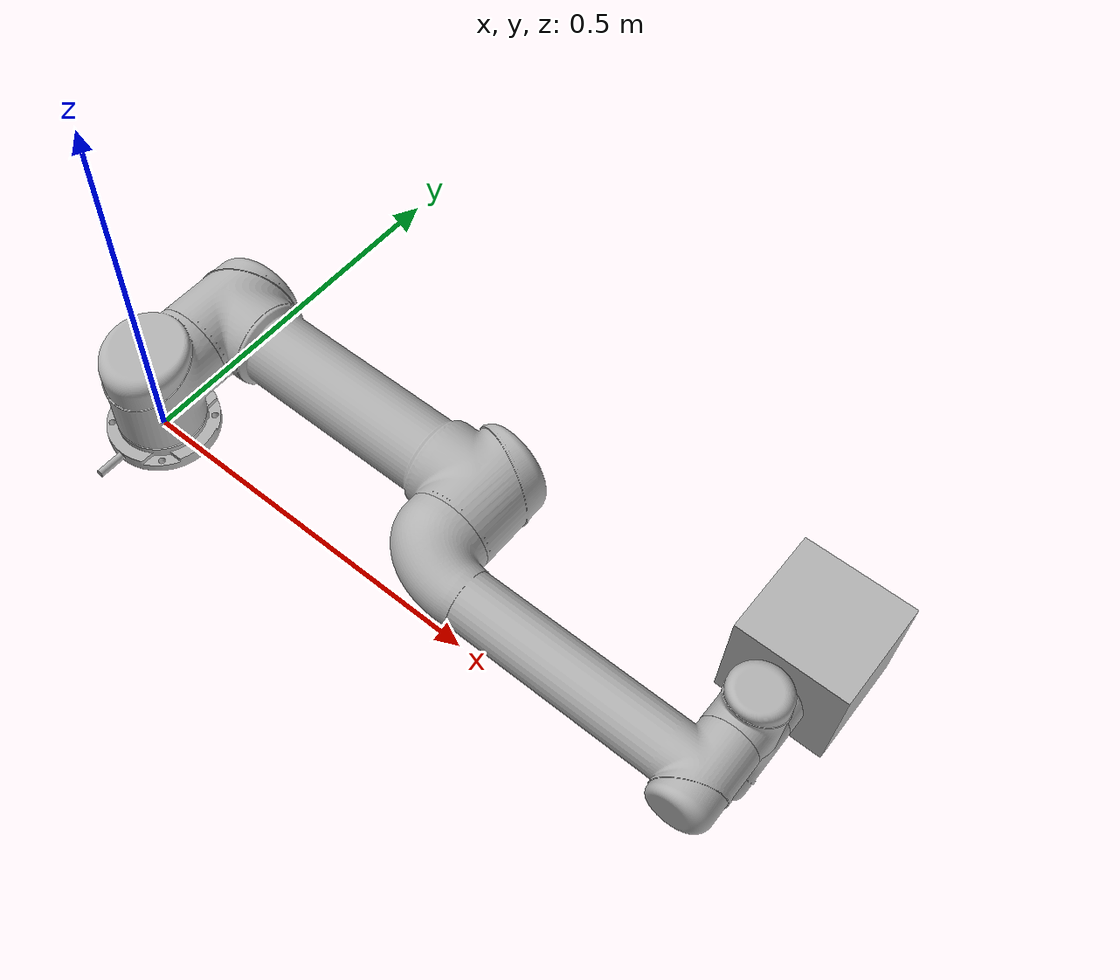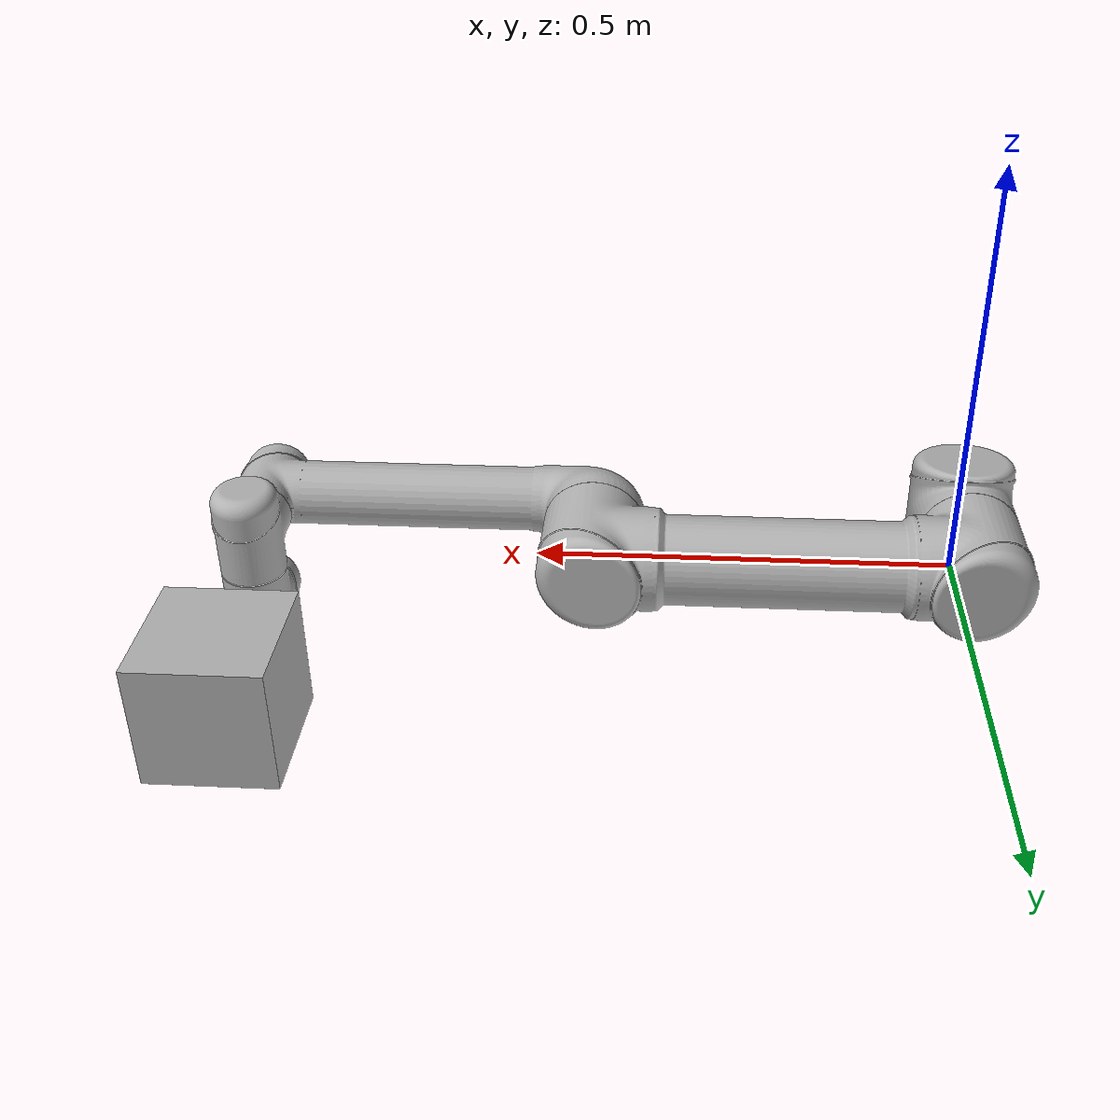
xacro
<?xml version="1.0"?>
<robot name="ur5" xmlns:xacro="http://www.ros.org/wiki/xacro">

  <xacro:include filename="$(find ur5_description)/urdf/ur5_joint_limited_robot.urdf.xacro" />
  <xacro:include filename="$(find robotiq_description)/urdf/robotiq_85_gripper.urdf.xacro" />
  <xacro:property name="width" value="0.15" />
  <xacro:property name="mass" value="4" /> <!-- arbitrary value for mass -->

  <!-- Robotiq Coupler -->
  <!--  + Height added by the coupler: 8mm -->
  <!--  + Reference frame: at the middle (4mm) -->
    <link name="box">
      <visual>
        <origin xyz="0 0 ${width/2}" rpy="0 0 0"/>
        <geometry>
          <box size="${width} ${width} ${width}"/>
        </geometry>
        <material name="orange">
          <color rgba="0.7 0.7 0.7 1.0"/>
        </material>
      </visual>
      <collision>
        <origin xyz="0 0 ${width/2}" rpy="0 0 0"/>
        <geometry>
          <box size="${width} ${width} ${width}"/>
        </geometry>
      </collision>
      <inertial>
        <origin xyz="0 0 ${width/2}" rpy="0 0 0"/>
        <mass value="${mass}"/>
        <inertia
            ixx="${mass / 12.0 * (width*width + width*width)}" ixy="0.0" ixz="0.0"
            iyy="${mass / 12.0 * (width*width + width*width)}" iyz="0.0"
            izz="${mass / 12.0 * (width*width + width*width)}"/>
      </inertial>
    </link>

    <joint name="box_joint" type="fixed">
      <origin xyz="0 0 0" rpy="0 0 0"/>
      <parent link="tool0"/>
      <child link="box"/>
    </joint>

    <gazebo reference="box">
        <mu1>10.0</mu1>
        <mu2>10.0</mu2>
        <material>Gazebo/Orange</material>
    </gazebo>

</robot>

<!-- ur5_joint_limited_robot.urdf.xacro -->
<robot xmlns:xacro="http://wiki.ros.org/xacro" name="ur5" >

  <xacro:arg name="transmission_hw_interface" default="hardware_interface/EffortJointInterface"/>

  <!-- common stuff -->
  <xacro:include filename="$(find ur5_description)/urdf/common.gazebo.xacro" />

  <!-- ur5 -->
  <xacro:include filename="$(find ur5_description)/urdf/ur5.urdf.xacro" />

  <!-- arm -->
  <xacro:ur5_robot prefix="" joint_limited="true"
    shoulder_pan_lower_limit="${-pi}" shoulder_pan_upper_limit="${pi}"
    shoulder_lift_lower_limit="${-pi}" shoulder_lift_upper_limit="${pi}"
    elbow_joint_lower_limit="${-pi}" elbow_joint_upper_limit="${pi}"
    wrist_1_lower_limit="${-pi}" wrist_1_upper_limit="${pi}"
    wrist_2_lower_limit="${-pi}" wrist_2_upper_limit="${pi}"
    wrist_3_lower_limit="${-pi}" wrist_3_upper_limit="${pi}"
    transmission_hw_interface="$(arg transmission_hw_interface)"
  />

  <link name="world" />

  <joint name="world_joint" type="fixed">
    <parent link="world" />
    <child link = "base_link" />
    <origin xyz="0.0 0.0 0.0" rpy="0.0 0.0 0.0" />
  </joint>

</robot>

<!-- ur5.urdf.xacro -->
<robot xmlns:xacro="http://wiki.ros.org/xacro">

  <xacro:include filename="$(find ur5_description)/urdf/ur.transmission.xacro" />
  <xacro:include filename="$(find ur5_description)/urdf/ur.gazebo.xacro" />

  <xacro:macro name="cylinder_inertial" params="radius length mass *origin">
    <inertial>
      <mass value="${mass}" />
      <xacro:insert_block name="origin" />
      <inertia ixx="${0.0833333 * mass * (3 * radius * radius + length * length)}" ixy="0.0" ixz="0.0"
        iyy="${0.0833333 * mass * (3 * radius * radius + length * length)}" iyz="0.0"
        izz="${0.5 * mass * radius * radius}" />
    </inertial>
  </xacro:macro>
  <!-- Eliminar luego -->
  <!-- arbitrary value for mass -->
  <!-- Eliminar luego -->

  <xacro:macro name="ur5_robot" params="prefix joint_limited
    shoulder_pan_lower_limit:=${-pi}    shoulder_pan_upper_limit:=${pi}
    shoulder_lift_lower_limit:=${-pi}    shoulder_lift_upper_limit:=${pi}
    elbow_joint_lower_limit:=${-pi}    elbow_joint_upper_limit:=${pi}
    wrist_1_lower_limit:=${-pi}    wrist_1_upper_limit:=${pi}
    wrist_2_lower_limit:=${-pi}    wrist_2_upper_limit:=${pi}
    wrist_3_lower_limit:=${-pi}    wrist_3_upper_limit:=${pi}
    transmission_hw_interface:=hardware_interface/PositionJointInterface
    safety_limits:=false safety_pos_margin:=0.15
    safety_k_position:=20">

    <!-- Inertia parameters -->
    <xacro:property name="base_mass" value="4.0" />  <!-- This mass might be incorrect -->
    <xacro:property name="shoulder_mass" value="3.7000" />
    <xacro:property name="upper_arm_mass" value="8.3930" />
    <xacro:property name="forearm_mass" value="2.2750" />
    <xacro:property name="wrist_1_mass" value="1.2190" />
    <xacro:property name="wrist_2_mass" value="1.2190" />
    <xacro:property name="wrist_3_mass" value="0.1879" />

    <xacro:property name="shoulder_cog" value="0.0 0.00193 -0.02561" />
    <xacro:property name="upper_arm_cog" value="0.0 -0.024201 0.2125" />
    <xacro:property name="forearm_cog" value="0.0 0.0265 0.11993" />
    <xacro:property name="wrist_1_cog" value="0.0 0.110949 0.01634" />
    <xacro:property name="wrist_2_cog" value="0.0 0.0018 0.11099" />
    <xacro:property name="wrist_3_cog" value="0.0 0.001159 0.0" />

    <!-- Kinematic model -->
    <!-- Properties from urcontrol.conf -->
    <xacro:property name="d1" value="0.089159" />
    <xacro:property name="a2" value="-0.42500" />
    <xacro:property name="a3" value="-0.39225" />
    <xacro:property name="d4" value="0.10915" />
    <xacro:property name="d5" value="0.09465" />
    <xacro:property name="d6" value="0.0823" />

    <!-- Arbitrary offsets for shoulder/elbow joints -->
    <xacro:property name="shoulder_offset" value="0.13585" />  <!-- measured from model -->
    <xacro:property name="elbow_offset" value="-0.1197" /> <!-- measured from model -->

    <!-- link lengths used in model -->
    <xacro:property name="shoulder_height" value="${d1}" />
    <xacro:property name="upper_arm_length" value="${-a2}" />
    <xacro:property name="forearm_length" value="${-a3}" />
    <xacro:property name="wrist_1_length" value="${d4 - elbow_offset - shoulder_offset}" />
    <xacro:property name="wrist_2_length" value="${d5}" />
    <xacro:property name="wrist_3_length" value="${d6}" />
    <!--property name="shoulder_height" value="0.089159" /-->
    <!--property name="shoulder_offset" value="0.13585" /-->  <!-- shoulder_offset - elbow_offset + wrist_1_length = 0.10915 -->
    <!--property name="upper_arm_length" value="0.42500" /-->
    <!--property name="elbow_offset" value="0.1197" /-->       <!-- CAD measured -->
    <!--property name="forearm_length" value="0.39225" /-->
    <!--property name="wrist_1_length" value="0.093" /-->     <!-- CAD measured -->
    <!--property name="wrist_2_length" value="0.09465" /-->   <!-- In CAD this distance is 0.930, but in the spec it is 0.09465 -->
    <!--property name="wrist_3_length" value="0.0823" /-->

    <xacro:property name="shoulder_radius" value="0.060" />   <!-- manually measured -->
    <xacro:property name="upper_arm_radius" value="0.054" />  <!-- manually measured -->
    <xacro:property name="elbow_radius" value="0.060" />      <!-- manually measured -->
    <xacro:property name="forearm_radius" value="0.040" />    <!-- manually measured -->
    <xacro:property name="wrist_radius" value="0.045" />      <!-- manually measured -->

    <link name="${prefix}base_link" >
      <visual>
        <geometry>
          <mesh filename="package://ur5_description/meshes/ur5/visual/base.dae" />
        </geometry>
        <material name="LightGrey">
          <color rgba="0.7 0.7 0.7 1.0"/>
        </material>
      </visual>
      <collision>
        <geometry>
          <mesh filename="package://ur5_description/meshes/ur5/collision/base.stl" />
        </geometry>
      </collision>
      <xacro:cylinder_inertial radius="0.06" length="0.05" mass="${base_mass}">
        <origin xyz="0.0 0.0 0.0" rpy="0 0 0" />
      </xacro:cylinder_inertial>
    </link>

    <joint name="${prefix}shoulder_pan_joint" type="revolute">
      <parent link="${prefix}base_link" />
      <child link = "${prefix}shoulder_link" />
      <origin xyz="0.0 0.0 ${shoulder_height}" rpy="0.0 0.0 0.0" />
      <axis xyz="0 0 1" />
      <xacro:unless value="${joint_limited}">
        <limit lower="${-2.0 * pi}" upper="${2.0 * pi}" effort="150.0" velocity="3.15"/>
        <xacro:if value="${safety_limits}">
          <safety_controller soft_lower_limit="${-2.0 * pi + safety_pos_margin}" soft_upper_limit="${2.0 * pi - safety_pos_margin}" k_position="${safety_k_position}" k_velocity="0.0"/>
        </xacro:if>
      </xacro:unless>
      <xacro:if value="${joint_limited}">
        <limit lower="${shoulder_pan_lower_limit}" upper="${shoulder_pan_upper_limit}" effort="150.0" velocity="3.15"/>
        <xacro:if value="${safety_limits}">
          <safety_controller soft_lower_limit="${shoulder_pan_lower_limit + safety_pos_margin}" soft_upper_limit="${shoulder_pan_upper_limit - safety_pos_margin}" k_position="${safety_k_position}" k_velocity="0.0"/>
        </xacro:if>
      </xacro:if>
      <dynamics damping="0.0" friction="0.0"/>
    </joint>

    <link name="${prefix}shoulder_link">
      <visual>
        <geometry>
          <mesh filename="package://ur5_description/meshes/ur5/visual/shoulder.dae" />
        </geometry>
        <material name="LightGrey">
          <color rgba="0.7 0.7 0.7 1.0"/>
        </material>
      </visual>
      <collision>
        <geometry>
          <mesh filename="package://ur5_description/meshes/ur5/collision/shoulder.stl" />
        </geometry>
      </collision>
      <xacro:cylinder_inertial radius="0.06" length="0.15" mass="${shoulder_mass}">
        <origin xyz="0.0 0.0 0.0" rpy="0 0 0" />
      </xacro:cylinder_inertial>
    </link>

    <joint name="${prefix}shoulder_lift_joint" type="revolute">
      <parent link="${prefix}shoulder_link" />
      <child link = "${prefix}upper_arm_link" />
      <origin xyz="0.0 ${shoulder_offset} 0.0" rpy="0.0 ${pi / 2.0} 0.0" />
      <axis xyz="0 1 0" />
      <xacro:unless value="${joint_limited}">
        <limit lower="${-2.0 * pi}" upper="${2.0 * pi}" effort="150.0" velocity="3.15"/>
        <xacro:if value="${safety_limits}">
          <safety_controller soft_lower_limit="${-2.0 * pi + safety_pos_margin}" soft_upper_limit="${2.0 * pi - safety_pos_margin}" k_position="${safety_k_position}" k_velocity="0.0"/>
        </xacro:if>
      </xacro:unless>
      <xacro:if value="${joint_limited}">
        <limit lower="${shoulder_lift_lower_limit}" upper="${shoulder_lift_upper_limit}" effort="150.0" velocity="3.15"/>
        <xacro:if value="${safety_limits}">
          <safety_controller soft_lower_limit="${shoulder_lift_lower_limit + safety_pos_margin}" soft_upper_limit="${shoulder_lift_upper_limit - safety_pos_margin}" k_position="${safety_k_position}" k_velocity="0.0"/>
        </xacro:if>
      </xacro:if>
      <dynamics damping="0.0" friction="0.0"/>
    </joint>

    <link name="${prefix}upper_arm_link">
      <visual>
        <geometry>
          <mesh filename="package://ur5_description/meshes/ur5/visual/upperarm.dae" />
        </geometry>
        <material name="LightGrey">
          <color rgba="0.7 0.7 0.7 1.0"/>
        </material>
      </visual>
      <collision>
        <geometry>
          <mesh filename="package://ur5_description/meshes/ur5/collision/upperarm.stl" />
        </geometry>
      </collision>
      <xacro:cylinder_inertial radius="0.06" length="0.56" mass="${upper_arm_mass}">
        <origin xyz="0.0 0.0 0.28" rpy="0 0 0" />
      </xacro:cylinder_inertial>
    </link>

    <joint name="${prefix}elbow_joint" type="revolute">
      <parent link="${prefix}upper_arm_link" />
      <child link = "${prefix}forearm_link" />
      <origin xyz="0.0 ${elbow_offset} ${upper_arm_length}" rpy="0.0 0.0 0.0" />
      <axis xyz="0 1 0" />
      <xacro:unless value="${joint_limited}">
        <limit lower="${-pi}" upper="${pi}" effort="150.0" velocity="3.15"/>
        <xacro:if value="${safety_limits}">
          <safety_controller soft_lower_limit="${-2.0 * pi + safety_pos_margin}" soft_upper_limit="${2.0 * pi - safety_pos_margin}" k_position="${safety_k_position}" k_velocity="0.0"/>
        </xacro:if>
      </xacro:unless>
      <xacro:if value="${joint_limited}">
        <limit lower="${elbow_joint_lower_limit}" upper="${elbow_joint_upper_limit}" effort="150.0" velocity="3.15"/>
        <xacro:if value="${safety_limits}">
          <safety_controller soft_lower_limit="${elbow_joint_lower_limit + safety_pos_margin}" soft_upper_limit="${elbow_joint_upper_limit - safety_pos_margin}" k_position="${safety_k_position}" k_velocity="0.0"/>
        </xacro:if>
      </xacro:if>
      <dynamics damping="0.0" friction="0.0"/>
    </joint>

    <link name="${prefix}forearm_link">
      <visual>
        <geometry>
          <mesh filename="package://ur5_description/meshes/ur5/visual/forearm.dae" />
        </geometry>
        <material name="LightGrey">
          <color rgba="0.7 0.7 0.7 1.0"/>
        </material>
      </visual>
      <collision>
        <geometry>
          <mesh filename="package://ur5_description/meshes/ur5/collision/forearm.stl" />
        </geometry>
      </collision>
      <xacro:cylinder_inertial radius="0.06" length="${-a3}" mass="${forearm_mass}">
        <origin xyz="0.0 0.0 ${-a3/2}" rpy="0 0 0" />
      </xacro:cylinder_inertial>
    </link>

    <joint name="${prefix}wrist_1_joint" type="revolute">
      <parent link="${prefix}forearm_link" />
      <child link = "${prefix}wrist_1_link" />
      <origin xyz="0.0 0.0 ${forearm_length}" rpy="0.0 ${pi / 2.0} 0.0" />
      <axis xyz="0 1 0" />
      <xacro:unless value="${joint_limited}">
        <limit lower="${-2.0 * pi}" upper="${2.0 * pi}" effort="28.0" velocity="3.2"/>
        <xacro:if value="${safety_limits}">
          <safety_controller soft_lower_limit="${-2.0 * pi + safety_pos_margin}" soft_upper_limit="${2.0 * pi - safety_pos_margin}" k_position="${safety_k_position}" k_velocity="0.0"/>
        </xacro:if>
      </xacro:unless>
      <xacro:if value="${joint_limited}">
        <limit lower="${wrist_1_lower_limit}" upper="${wrist_1_upper_limit}" effort="28.0" velocity="3.2"/>
        <xacro:if value="${safety_limits}">
          <safety_controller soft_lower_limit="${wrist_1_lower_limit + safety_pos_margin}" soft_upper_limit="${wrist_1_upper_limit - safety_pos_margin}" k_position="${safety_k_position}" k_velocity="0.0"/>
        </xacro:if>
      </xacro:if>
      <dynamics damping="0.0" friction="0.0"/>
    </joint>

    <link name="${prefix}wrist_1_link">
      <visual>
        <geometry>
          <mesh filename="package://ur5_description/meshes/ur5/visual/wrist1.dae" />
        </geometry>
        <material name="LightGrey">
          <color rgba="0.7 0.7 0.7 1.0"/>
        </material>
      </visual>
      <collision>
        <geometry>
          <mesh filename="package://ur5_description/meshes/ur5/collision/wrist1.stl" />
        </geometry>
      </collision>
      <xacro:cylinder_inertial radius="0.06" length="0.12" mass="${wrist_1_mass}">
        <origin xyz="0.0 ${wrist_1_length} 0.0" rpy="0 0 0" />
      </xacro:cylinder_inertial>
    </link>

    <joint name="${prefix}wrist_2_joint" type="revolute">
      <parent link="${prefix}wrist_1_link" />
      <child link = "${prefix}wrist_2_link" />
      <origin xyz="0.0 ${wrist_1_length} 0.0" rpy="0.0 0.0 0.0" />
      <axis xyz="0 0 1" />
      <xacro:unless value="${joint_limited}">
        <limit lower="${-2.0 * pi}" upper="${2.0 * pi}" effort="28.0" velocity="3.2"/>
        <xacro:if value="${safety_limits}">
          <safety_controller soft_lower_limit="${-2.0 * pi + safety_pos_margin}" soft_upper_limit="${2.0 * pi - safety_pos_margin}" k_position="${safety_k_position}" k_velocity="0.0"/>
        </xacro:if>
      </xacro:unless>
      <xacro:if value="${joint_limited}">
        <limit lower="${wrist_2_lower_limit}" upper="${wrist_2_upper_limit}" effort="28.0" velocity="3.2"/>
        <xacro:if value="${safety_limits}">
          <safety_controller soft_lower_limit="${wrist_2_lower_limit + safety_pos_margin}" soft_upper_limit="${wrist_2_upper_limit - safety_pos_margin}" k_position="${safety_k_position}" k_velocity="0.0"/>
        </xacro:if>
      </xacro:if>
      <dynamics damping="0.0" friction="0.0"/>
    </joint>

    <link name="${prefix}wrist_2_link">
      <visual>
        <geometry>
          <mesh filename="package://ur5_description/meshes/ur5/visual/wrist2.dae" />
        </geometry>
        <material name="LightGrey">
          <color rgba="0.7 0.7 0.7 1.0"/>
        </material>
      </visual>
      <collision>
        <geometry>
          <mesh filename="package://ur5_description/meshes/ur5/collision/wrist2.stl" />
        </geometry>
      </collision>
      <xacro:cylinder_inertial radius="0.06" length="0.12" mass="${wrist_2_mass}">
        <origin xyz="0.0 0.0 ${wrist_2_length}" rpy="0 0 0" />
      </xacro:cylinder_inertial>
    </link>

    <joint name="${prefix}wrist_3_joint" type="revolute">
      <parent link="${prefix}wrist_2_link" />
      <child link = "${prefix}wrist_3_link" />
      <origin xyz="0.0 0.0 ${wrist_2_length}" rpy="0.0 0.0 0.0" />
      <axis xyz="0 1 0" />
      <xacro:unless value="${joint_limited}">
        <limit lower="${-2.0 * pi}" upper="${2.0 * pi}" effort="28.0" velocity="3.2"/>
        <xacro:if value="${safety_limits}">
          <safety_controller soft_lower_limit="${-2.0 * pi + safety_pos_margin}" soft_upper_limit="${2.0 * pi - safety_pos_margin}" k_position="${safety_k_position}" k_velocity="0.0"/>
        </xacro:if>
      </xacro:unless>
      <xacro:if value="${joint_limited}">
        <limit lower="${wrist_3_lower_limit}" upper="${wrist_3_upper_limit}" effort="28.0" velocity="3.2"/>
        <xacro:if value="${safety_limits}">
          <safety_controller soft_lower_limit="${wrist_3_lower_limit + safety_pos_margin}" soft_upper_limit="${wrist_3_upper_limit - safety_pos_margin}" k_position="${safety_k_position}" k_velocity="0.0"/>
        </xacro:if>
      </xacro:if>
      <dynamics damping="0.0" friction="0.0"/>
    </joint>

    <link name="${prefix}wrist_3_link">
      <visual>
        <geometry>
          <mesh filename="package://ur5_description/meshes/ur5/visual/wrist3.dae" />
        </geometry>
        <material name="LightGrey">
          <color rgba="0.7 0.7 0.7 1.0"/>
        </material>
      </visual>
      <collision>
        <geometry>
          <mesh filename="package://ur5_description/meshes/ur5/collision/wrist3.stl" />
        </geometry>
      </collision>
      <xacro:cylinder_inertial radius="0.0375" length="0.0345" mass="${wrist_3_mass}">
        <origin xyz="0.0 ${wrist_3_length - 0.0345/2} 0.0" rpy="${pi/2} 0 0" />
      </xacro:cylinder_inertial>
    </link>

    <joint name="${prefix}ee_fixed_joint" type="fixed">
      <parent link="${prefix}wrist_3_link" />
      <child link = "${prefix}ee_link" />
      <origin xyz="0.0 ${wrist_3_length} 0.0" rpy="0.0 0.0 ${pi/2.0}" />
    </joint>

    <link name="${prefix}ee_link">
      <collision>
        <geometry>
          <box size="0.01 0.01 0.01"/>
        </geometry>
        <origin rpy="0 0 0" xyz="-0.01 0 0"/>
      </collision>
    </link>

    <xacro:ur_arm_transmission prefix="${prefix}" hw_interface="${transmission_hw_interface}" />
    <xacro:ur_arm_gazebo prefix="${prefix}" />

    <!-- ROS base_link to UR 'Base' Coordinates transform -->
    <link name="${prefix}base"/>
    <joint name="${prefix}base_link-base_fixed_joint" type="fixed">
      <!-- NOTE: this rotation is only needed as long as base_link itself is
                 not corrected wrt the real robot (ie: rotated over 180
                 degrees)
      -->
      <origin xyz="0 0 0" rpy="0 0 ${-pi}"/>
      <parent link="${prefix}base_link"/>
      <child link="${prefix}base"/>
    </joint>

    <!-- Frame coincident with all-zeros TCP on UR controller -->
    <link name="${prefix}tool0"/>
    <joint name="${prefix}wrist_3_link-tool0_fixed_joint" type="fixed">
      <origin xyz="0 ${wrist_3_length} 0" rpy="${pi/-2.0} 0 0"/>
      <parent link="${prefix}wrist_3_link"/>
      <child link="${prefix}tool0"/>
    </joint>

  </xacro:macro>
</robot>
